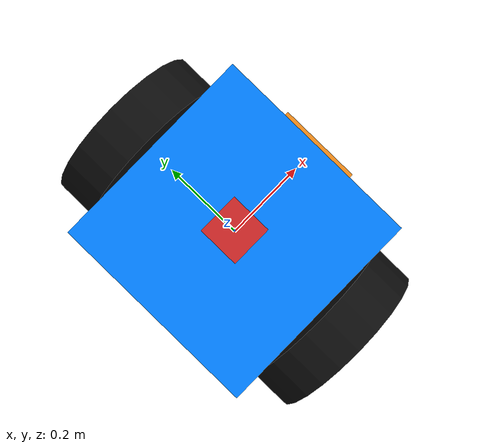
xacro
<?xml version="1.0" ?>
<robot name="differential_drive" xmlns:xacro="http://www.ros.org/wiki/xacro">
    <xacro:include filename="$(find ros_sim)/urdf/base.xacro" />
    <xacro:include filename="$(find ros_sim)/urdf/wheel.xacro" />
    <xacro:include filename="$(find ros_sim)/urdf/sensors.xacro" />
    <xacro:include filename="$(find ros_sim)/urdf/robot_base.gazebo" />
    <link name="world">
        <pose>0 0 0 0 0 0</pose>
    </link>
    <xacro:base/>
    <xacro:wheel prefix="left" reflect="1"/>
    <xacro:wheel prefix="right" reflect="-1"/>
    <xacro:camera_sensor/>
    <xacro:imu_sensor/>
    <gazebo>
        <plugin name="gazebo_ros_control" filename="libgazebo_ros_control.so">
        </plugin>
    </gazebo>
    <joint name="base_link_to_chassis" type="fixed">
        <parent link="world"/>
        <child link="base_link"/>
    </joint>
    <gazebo reference="base_link">
        <material>Gazebo/Blue</material>
        <mu1>0.01</mu1>
        <mu2>0.01</mu2>
    </gazebo>
</robot>

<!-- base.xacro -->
<robot xmlns:xacro="http://www.ros.org/wiki/xacro">
    <xacro:macro name="base" params="">
    <link name="base_link">
    <!-- Base Link -->
        <visual>
            <origin xyz="0 0 0" rpy="0 0 0"/>
            <geometry>
                <box size="0.5 0.5 0.25"/>
            </geometry>
            <material name="blue">
                <color rgba="0 0.5 1 1"/>
            </material>
        </visual>
        <collision>
            <origin xyz="0 0 0" rpy="0 0 0"/>
            <geometry>
                <box size="0.5 0.5 0.25"/>
            </geometry>
        </collision>
        <inertial>
            <origin xyz="0 0 0" rpy="0 0 0"/>
            <mass value="1"/>
            <inertia
                ixx="0.026041667" ixy="0" ixz="0"
                iyy="0.026041667" iyz="0"
                izz="0.010416667"/>
        </inertial>

        <!-- Caster -->
        <visual name="caster">
            <origin xyz="0.2 0.0 -0.125" rpy="0.0 0.0 0.0"/>
            <geometry>
                <sphere radius="0.05"/>
            </geometry>
        </visual>
        <collision>
            <origin xyz="0.2 0 -0.125" rpy="0 0 0"/>
            <geometry>
                <sphere radius="0.05"/>
            </geometry>
        </collision>
    </link>
    </xacro:macro>
        <gazebo reference="base_link">
        <material>Gazebo/Blue</material>
        <mu1>0.01</mu1>
        <mu2>0.01</mu2>
    </gazebo>
</robot>

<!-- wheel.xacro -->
<robot xmlns:xacro="http://www.ros.org/wiki/xacro">
    <xacro:macro name="wheel" params="prefix reflect">
        <link name="${prefix}_wheel">
            <visual>
                <geometry>
                    <cylinder length="0.1" radius="0.2"/>
                </geometry>
                <origin xyz="0 0 0" rpy="${reflect*1.570796} 0 0"/>
                <material name="black">
                    <color rgba="0.05 0.05 0.05 1.0"/>
                </material>
            </visual>
            <collision >
                <origin xyz="0 0 0" rpy="1.570795 0 0" />
                <geometry >
                    <cylinder length ="0.1" radius ="0.2" />
                </geometry >
            </collision >
            <inertial >
                <origin xyz="0 0 0" rpy="1.570795 0 0" />
                <mass value="1"/>
                <inertia
                    ixx="0.010833333" ixy="0" ixz="0"
                    iyy="0.010833333" iyz="0"
                    izz="0.005" />
            </inertial >
        </link>
        <joint name="${prefix}_wheel_joint" type="continuous">
            <parent link="base_link"/>
            <child link="${prefix}_wheel"/>
            <origin xyz="0 ${reflect*-0.3} 0" rpy="0 0 0"/>
            <axis xyz="0 1 0"/>
        </joint>
        <gazebo reference="${prefix}_wheel">
            <mu1>1.0</mu1>
            <mu2>1.0</mu2>
            <kp>500000.0</kp>
            <kd>10.0</kd>
            <minDepth>0.001</minDepth>
            <maxVel>0.1</maxVel>
            <material>Gazebo/Black</material>
        </gazebo>
        <transmission name="${prefix}_wheel_trans">
            <type>transmission_interface/SimpleTransmission</type>
            <joint name="${prefix}_wheel_joint">
                <hardwareInterface>hardware_interface/VelocityJointInterface</hardwareInterface>
            </joint>
            <actuator name="${prefix}_wheel_motor">
              <mechanicalReduction>34</mechanicalReduction>
               <hardwareInterface>hardware_interface/VelocityJointInterface</hardwareInterface>
            </actuator>
        </transmission>
            <gazebo reference="right_wheel">
        <mu1>1.0</mu1>
        <mu2>1.0</mu2>
        <kp>500000.0</kp>
        <kd>10.0</kd>
        <minDepth>0.001</minDepth>
        <maxVel>0.1</maxVel>
        <material>Gazebo/Black</material>
    </gazebo>
    </xacro:macro>
</robot>

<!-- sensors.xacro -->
<robot xmlns:xacro="http://www.ros.org/wiki/xacro">

    <xacro:macro name="camera_sensor" params="">
        <link name="camera_link" >
            <visual >
                <origin xyz="0 0 0" rpy="0 1.570795 0" />
                <geometry >
                    <box size="0.1 0.2 0.025" />
                </geometry >
            </visual >
            <collision >
                <origin xyz="0 0 0" rpy="0 1.570795 0" />
                <geometry >
                    <box size="0.1 0.2 0.025" />
                </geometry >
            </collision >
            <inertial >
                <mass value="1e-5" />
                <origin xyz="0 0 0" rpy="0 1.570795 0" />
                <inertia ixx="1e-6" ixy="0" ixz="0" iyy="1e-6" iyz="0"
                izz="1e-6" />
            </inertial >
        </link>
        <gazebo reference="camera_link">
            <sensor type="camera" name="camera">
                <update_rate>30.0</update_rate>
                <camera name="head">
                    <horizontal_fov>1.3962634</horizontal_fov>
                    <image>
                        <width>800</width>
                        <height>800</height>
                        <format>R8G8B8</format>
                    </image>
                    <clip>
                        <near>0.02</near>
                        <far>300</far>
                    </clip>
                    <noise>
                        <type>gaussian</type>
                        <mean>0.0</mean>
                        <stddev>0.007</stddev>
                    </noise>
                </camera>
                <plugin name="camera_controller"
                filename ="libgazebo_ros_camera.so" >
                    <alwaysOn >true</alwaysOn >
                    <updateRate >0.0</updateRate >
                    <cameraName >camera </cameraName >
                    <imageTopicName >image_raw </imageTopicName >
                    <cameraInfoTopicName >camera_info </cameraInfoTopicName >
                    <frameName >camera_link </frameName >
                    <hackBaseline >0.07</hackBaseline >
                    <distortionK1 >0.0</distortionK1 >
                    <distortionK2 >0.0</distortionK2 >
                    <distortionK3 >0.0</distortionK3 >
                    <distortionT1 >0.0</distortionT1 >
                    <distortionT2 >0.0</distortionT2 >
                </plugin >
            </sensor >
        </gazebo >
        <gazebo reference="camera_link">
            <material>Gazebo/Orange</material>
        </gazebo>
        <!--CAMERA joint-->
        <joint name="camera_joint" type="fixed">
            <origin xyz="0.26 0 0" rpy="0 0 0"/>
            <parent link="base_link"/>
            <child link="camera_link"/>
            <axis xyz="0 1 0" />
        </joint>
    </xacro:macro>

    <xacro:macro name="imu_sensor" params="">
        <link name="imu_link" >
            <visual >
                <origin xyz="0 0 0" rpy="0 0 0" />
                <geometry >
                    <box size="0.1 0.1 0.025" />
                </geometry >
            </visual >
            <collision >
                <origin xyz="0 0 0" rpy="0 0 0" />
                <geometry >
                    <box size="0.1 0.1 0.025" />
                </geometry >
            </collision >
            <inertial >
                <origin xyz="0 0 0" rpy="0 0 0" />
                <mass value="1e-5" />
                <inertia ixx="1e-6" ixy="0" ixz="0" iyy="1e-6"
                    iyz="0" izz="1e-6" />
            </inertial >
        </link>
        <gazebo reference ="imu_link" >
            <gravity >true</gravity >
            <sensor name="imu_sensor" type="imu">
                <always_on >true</always_on >
                <update_rate >100</update_rate >
                <visualize >true</visualize >
                <topic>__default_topic__ </topic>
                <plugin filename ="libgazebo_ros_imu_sensor.so"
                name="imu_plugin" >
                    <topicName >imu</topicName >
                    <bodyName >imu_link </bodyName >
                    <updateRateHZ >10.0</updateRateHZ >
                    <gaussianNoise >0.0</gaussianNoise >
                    <xyzOffset >0 0 0</xyzOffset >
                    <rpyOffset >0 0 0</rpyOffset >
                    <frameName >imu_link </frameName >
                    <initialOrientationAsReference >false</initialOrientationAsReference >
                </plugin >
                <pose>0 0 0 0 0 0 </pose>
            </sensor >
        </gazebo>
        <gazebo reference="imu_link">
            <material>Gazebo/Red</material>
        </gazebo>
            <!--IMU joint-->
        <joint name="joint_imu" type="fixed">
            <parent link="base_link" />
            <child link="imu_link" />
            <origin xyz="0 0 0.125" rpy="0 0 0" />
        </joint>

    </xacro:macro>

</robot>
